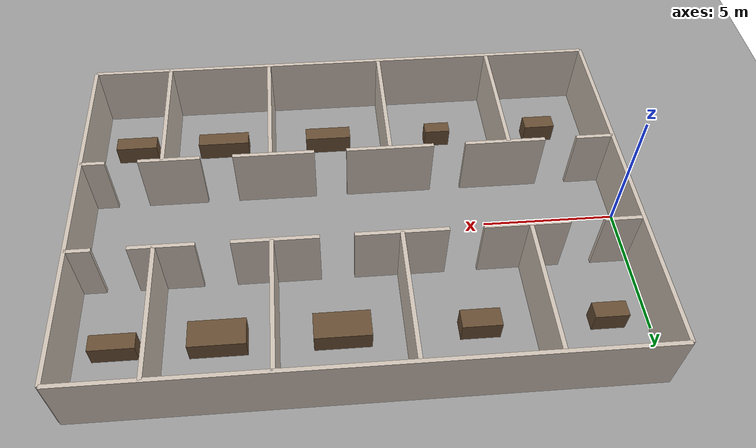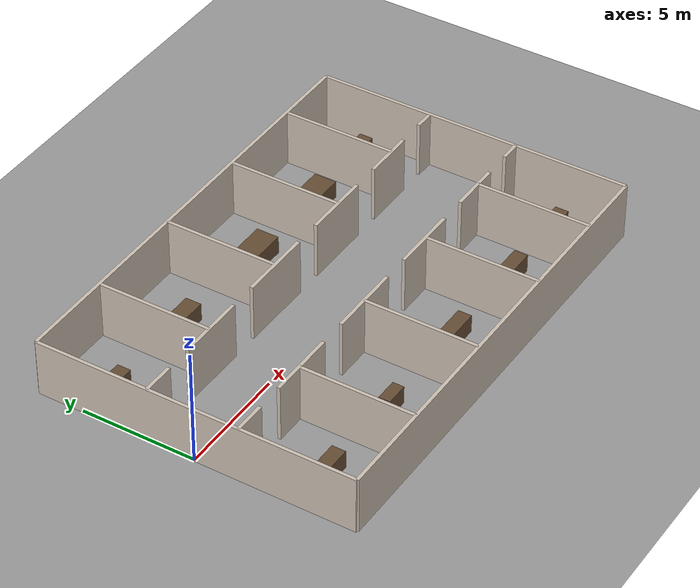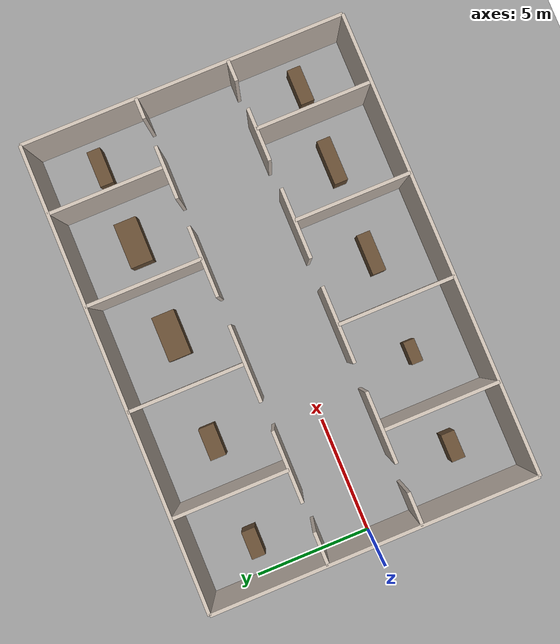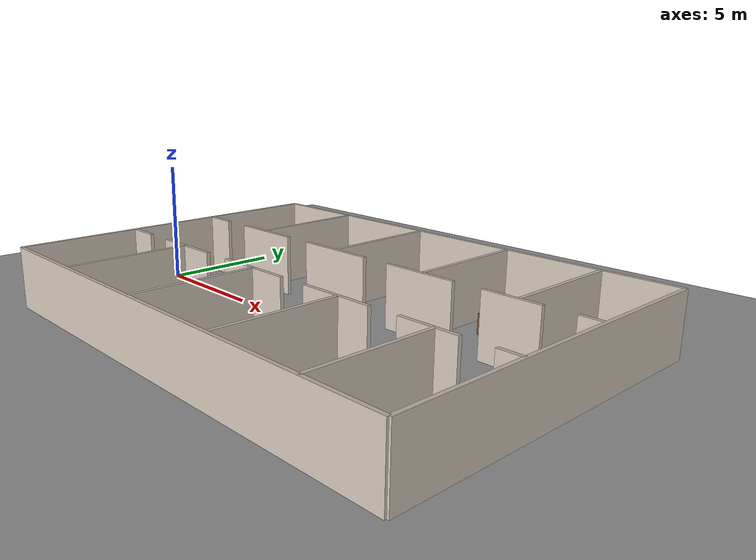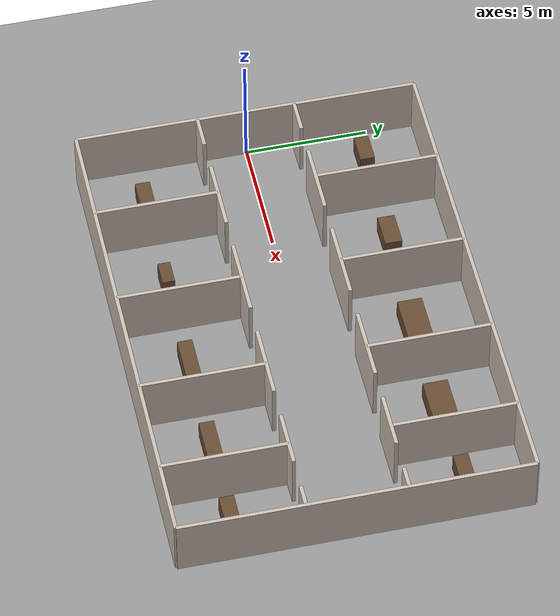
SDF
<?xml version="1.0"?>
<sdf version="1.8">
  <world name="safenav_lab">
    <physics name="1ms" type="ignored">
      <max_step_size>0.001</max_step_size>
      <real_time_factor>1.0</real_time_factor>
    </physics>
    <plugin filename="ignition-gazebo-physics-system" name="ignition::gazebo::systems::Physics"/>
    <plugin filename="ignition-gazebo-user-commands-system" name="ignition::gazebo::systems::UserCommands"/>
    <plugin filename="ignition-gazebo-scene-broadcaster-system" name="ignition::gazebo::systems::SceneBroadcaster"/>
    <plugin filename="ignition-gazebo-contact-system" name="ignition::gazebo::systems::Contact"/>
    <plugin filename="ignition-gazebo-sensors-system" name="ignition::gazebo::systems::Sensors">
      <render_engine>ogre2</render_engine>
    </plugin>

    <light type="directional" name="sun">
      <cast_shadows>true</cast_shadows>
      <pose>0 0 10 0 0 0</pose>
      <diffuse>0.8 0.8 0.8 1</diffuse>
      <specular>0.2 0.2 0.2 1</specular>
      <direction>-0.5 0.1 -0.9</direction>
    </light>

    <model name="ground_plane">
      <static>true</static>
      <link name="link">
        <collision name="collision">
          <geometry><plane><normal>0 0 1</normal><size>40 40</size></plane></geometry>
        </collision>
        <visual name="visual">
          <geometry><plane><normal>0 0 1</normal><size>40 40</size></plane></geometry>
          <material><ambient>0.6 0.6 0.6 1</ambient><diffuse>0.6 0.6 0.6 1</diffuse></material>
        </visual>
      </link>
    </model>
    <model name="wall_0">
      <static>true</static>
      <pose>10.000 -7.000 1.250 0 0 0.000000</pose>
      <link name="link">
        <collision name="collision">
          <geometry><box><size>20.000 0.150 2.500</size></box></geometry>
        </collision>
        <visual name="visual">
          <geometry><box><size>20.000 0.150 2.500</size></box></geometry>
          <material><ambient>0.8 0.75 0.7 1</ambient><diffuse>0.8 0.75 0.7 1</diffuse></material>
        </visual>
      </link>
    </model>
    <model name="wall_1">
      <static>true</static>
      <pose>10.000 7.000 1.250 0 0 0.000000</pose>
      <link name="link">
        <collision name="collision">
          <geometry><box><size>20.000 0.150 2.500</size></box></geometry>
        </collision>
        <visual name="visual">
          <geometry><box><size>20.000 0.150 2.500</size></box></geometry>
          <material><ambient>0.8 0.75 0.7 1</ambient><diffuse>0.8 0.75 0.7 1</diffuse></material>
        </visual>
      </link>
    </model>
    <model name="wall_2">
      <static>true</static>
      <pose>0.000 0.000 1.250 0 0 1.570796</pose>
      <link name="link">
        <collision name="collision">
          <geometry><box><size>14.000 0.150 2.500</size></box></geometry>
        </collision>
        <visual name="visual">
          <geometry><box><size>14.000 0.150 2.500</size></box></geometry>
          <material><ambient>0.8 0.75 0.7 1</ambient><diffuse>0.8 0.75 0.7 1</diffuse></material>
        </visual>
      </link>
    </model>
    <model name="wall_3">
      <static>true</static>
      <pose>20.000 0.000 1.250 0 0 1.570796</pose>
      <link name="link">
        <collision name="collision">
          <geometry><box><size>14.000 0.150 2.500</size></box></geometry>
        </collision>
        <visual name="visual">
          <geometry><box><size>14.000 0.150 2.500</size></box></geometry>
          <material><ambient>0.8 0.75 0.7 1</ambient><diffuse>0.8 0.75 0.7 1</diffuse></material>
        </visual>
      </link>
    </model>
    <model name="wall_4">
      <static>true</static>
      <pose>0.700 2.000 1.250 0 0 0.000000</pose>
      <link name="link">
        <collision name="collision">
          <geometry><box><size>1.400 0.150 2.500</size></box></geometry>
        </collision>
        <visual name="visual">
          <geometry><box><size>1.400 0.150 2.500</size></box></geometry>
          <material><ambient>0.8 0.75 0.7 1</ambient><diffuse>0.8 0.75 0.7 1</diffuse></material>
        </visual>
      </link>
    </model>
    <model name="wall_5">
      <static>true</static>
      <pose>4.125 2.000 1.250 0 0 0.000000</pose>
      <link name="link">
        <collision name="collision">
          <geometry><box><size>3.050 0.150 2.500</size></box></geometry>
        </collision>
        <visual name="visual">
          <geometry><box><size>3.050 0.150 2.500</size></box></geometry>
          <material><ambient>0.8 0.75 0.7 1</ambient><diffuse>0.8 0.75 0.7 1</diffuse></material>
        </visual>
      </link>
    </model>
    <model name="wall_6">
      <static>true</static>
      <pose>8.500 2.000 1.250 0 0 0.000000</pose>
      <link name="link">
        <collision name="collision">
          <geometry><box><size>3.300 0.150 2.500</size></box></geometry>
        </collision>
        <visual name="visual">
          <geometry><box><size>3.300 0.150 2.500</size></box></geometry>
          <material><ambient>0.8 0.75 0.7 1</ambient><diffuse>0.8 0.75 0.7 1</diffuse></material>
        </visual>
      </link>
    </model>
    <model name="wall_7">
      <static>true</static>
      <pose>12.875 2.000 1.250 0 0 0.000000</pose>
      <link name="link">
        <collision name="collision">
          <geometry><box><size>3.050 0.150 2.500</size></box></geometry>
        </collision>
        <visual name="visual">
          <geometry><box><size>3.050 0.150 2.500</size></box></geometry>
          <material><ambient>0.8 0.75 0.7 1</ambient><diffuse>0.8 0.75 0.7 1</diffuse></material>
        </visual>
      </link>
    </model>
    <model name="wall_8">
      <static>true</static>
      <pose>16.750 2.000 1.250 0 0 0.000000</pose>
      <link name="link">
        <collision name="collision">
          <geometry><box><size>2.300 0.150 2.500</size></box></geometry>
        </collision>
        <visual name="visual">
          <geometry><box><size>2.300 0.150 2.500</size></box></geometry>
          <material><ambient>0.8 0.75 0.7 1</ambient><diffuse>0.8 0.75 0.7 1</diffuse></material>
        </visual>
      </link>
    </model>
    <model name="wall_9">
      <static>true</static>
      <pose>19.550 2.000 1.250 0 0 0.000000</pose>
      <link name="link">
        <collision name="collision">
          <geometry><box><size>0.900 0.150 2.500</size></box></geometry>
        </collision>
        <visual name="visual">
          <geometry><box><size>0.900 0.150 2.500</size></box></geometry>
          <material><ambient>0.8 0.75 0.7 1</ambient><diffuse>0.8 0.75 0.7 1</diffuse></material>
        </visual>
      </link>
    </model>
    <model name="wall_10">
      <static>true</static>
      <pose>0.700 -2.000 1.250 0 0 0.000000</pose>
      <link name="link">
        <collision name="collision">
          <geometry><box><size>1.400 0.150 2.500</size></box></geometry>
        </collision>
        <visual name="visual">
          <geometry><box><size>1.400 0.150 2.500</size></box></geometry>
          <material><ambient>0.8 0.75 0.7 1</ambient><diffuse>0.8 0.75 0.7 1</diffuse></material>
        </visual>
      </link>
    </model>
    <model name="wall_11">
      <static>true</static>
      <pose>4.125 -2.000 1.250 0 0 0.000000</pose>
      <link name="link">
        <collision name="collision">
          <geometry><box><size>3.050 0.150 2.500</size></box></geometry>
        </collision>
        <visual name="visual">
          <geometry><box><size>3.050 0.150 2.500</size></box></geometry>
          <material><ambient>0.8 0.75 0.7 1</ambient><diffuse>0.8 0.75 0.7 1</diffuse></material>
        </visual>
      </link>
    </model>
    <model name="wall_12">
      <static>true</static>
      <pose>8.500 -2.000 1.250 0 0 0.000000</pose>
      <link name="link">
        <collision name="collision">
          <geometry><box><size>3.300 0.150 2.500</size></box></geometry>
        </collision>
        <visual name="visual">
          <geometry><box><size>3.300 0.150 2.500</size></box></geometry>
          <material><ambient>0.8 0.75 0.7 1</ambient><diffuse>0.8 0.75 0.7 1</diffuse></material>
        </visual>
      </link>
    </model>
    <model name="wall_13">
      <static>true</static>
      <pose>12.875 -2.000 1.250 0 0 0.000000</pose>
      <link name="link">
        <collision name="collision">
          <geometry><box><size>3.050 0.150 2.500</size></box></geometry>
        </collision>
        <visual name="visual">
          <geometry><box><size>3.050 0.150 2.500</size></box></geometry>
          <material><ambient>0.8 0.75 0.7 1</ambient><diffuse>0.8 0.75 0.7 1</diffuse></material>
        </visual>
      </link>
    </model>
    <model name="wall_14">
      <static>true</static>
      <pose>16.750 -2.000 1.250 0 0 0.000000</pose>
      <link name="link">
        <collision name="collision">
          <geometry><box><size>2.300 0.150 2.500</size></box></geometry>
        </collision>
        <visual name="visual">
          <geometry><box><size>2.300 0.150 2.500</size></box></geometry>
          <material><ambient>0.8 0.75 0.7 1</ambient><diffuse>0.8 0.75 0.7 1</diffuse></material>
        </visual>
      </link>
    </model>
    <model name="wall_15">
      <static>true</static>
      <pose>19.550 -2.000 1.250 0 0 0.000000</pose>
      <link name="link">
        <collision name="collision">
          <geometry><box><size>0.900 0.150 2.500</size></box></geometry>
        </collision>
        <visual name="visual">
          <geometry><box><size>0.900 0.150 2.500</size></box></geometry>
          <material><ambient>0.8 0.75 0.7 1</ambient><diffuse>0.8 0.75 0.7 1</diffuse></material>
        </visual>
      </link>
    </model>
    <model name="wall_16">
      <static>true</static>
      <pose>4.000 4.500 1.250 0 0 1.570796</pose>
      <link name="link">
        <collision name="collision">
          <geometry><box><size>5.000 0.150 2.500</size></box></geometry>
        </collision>
        <visual name="visual">
          <geometry><box><size>5.000 0.150 2.500</size></box></geometry>
          <material><ambient>0.8 0.75 0.7 1</ambient><diffuse>0.8 0.75 0.7 1</diffuse></material>
        </visual>
      </link>
    </model>
    <model name="wall_17">
      <static>true</static>
      <pose>8.500 4.500 1.250 0 0 1.570796</pose>
      <link name="link">
        <collision name="collision">
          <geometry><box><size>5.000 0.150 2.500</size></box></geometry>
        </collision>
        <visual name="visual">
          <geometry><box><size>5.000 0.150 2.500</size></box></geometry>
          <material><ambient>0.8 0.75 0.7 1</ambient><diffuse>0.8 0.75 0.7 1</diffuse></material>
        </visual>
      </link>
    </model>
    <model name="wall_18">
      <static>true</static>
      <pose>13.000 4.500 1.250 0 0 1.570796</pose>
      <link name="link">
        <collision name="collision">
          <geometry><box><size>5.000 0.150 2.500</size></box></geometry>
        </collision>
        <visual name="visual">
          <geometry><box><size>5.000 0.150 2.500</size></box></geometry>
          <material><ambient>0.8 0.75 0.7 1</ambient><diffuse>0.8 0.75 0.7 1</diffuse></material>
        </visual>
      </link>
    </model>
    <model name="wall_19">
      <static>true</static>
      <pose>17.000 4.500 1.250 0 0 1.570796</pose>
      <link name="link">
        <collision name="collision">
          <geometry><box><size>5.000 0.150 2.500</size></box></geometry>
        </collision>
        <visual name="visual">
          <geometry><box><size>5.000 0.150 2.500</size></box></geometry>
          <material><ambient>0.8 0.75 0.7 1</ambient><diffuse>0.8 0.75 0.7 1</diffuse></material>
        </visual>
      </link>
    </model>
    <model name="wall_20">
      <static>true</static>
      <pose>4.000 -4.500 1.250 0 0 1.570796</pose>
      <link name="link">
        <collision name="collision">
          <geometry><box><size>5.000 0.150 2.500</size></box></geometry>
        </collision>
        <visual name="visual">
          <geometry><box><size>5.000 0.150 2.500</size></box></geometry>
          <material><ambient>0.8 0.75 0.7 1</ambient><diffuse>0.8 0.75 0.7 1</diffuse></material>
        </visual>
      </link>
    </model>
    <model name="wall_21">
      <static>true</static>
      <pose>8.500 -4.500 1.250 0 0 1.570796</pose>
      <link name="link">
        <collision name="collision">
          <geometry><box><size>5.000 0.150 2.500</size></box></geometry>
        </collision>
        <visual name="visual">
          <geometry><box><size>5.000 0.150 2.500</size></box></geometry>
          <material><ambient>0.8 0.75 0.7 1</ambient><diffuse>0.8 0.75 0.7 1</diffuse></material>
        </visual>
      </link>
    </model>
    <model name="wall_22">
      <static>true</static>
      <pose>13.000 -4.500 1.250 0 0 1.570796</pose>
      <link name="link">
        <collision name="collision">
          <geometry><box><size>5.000 0.150 2.500</size></box></geometry>
        </collision>
        <visual name="visual">
          <geometry><box><size>5.000 0.150 2.500</size></box></geometry>
          <material><ambient>0.8 0.75 0.7 1</ambient><diffuse>0.8 0.75 0.7 1</diffuse></material>
        </visual>
      </link>
    </model>
    <model name="wall_23">
      <static>true</static>
      <pose>17.000 -4.500 1.250 0 0 1.570796</pose>
      <link name="link">
        <collision name="collision">
          <geometry><box><size>5.000 0.150 2.500</size></box></geometry>
        </collision>
        <visual name="visual">
          <geometry><box><size>5.000 0.150 2.500</size></box></geometry>
          <material><ambient>0.8 0.75 0.7 1</ambient><diffuse>0.8 0.75 0.7 1</diffuse></material>
        </visual>
      </link>
    </model>
    <model name="furniture_reception_counter">
      <static>true</static>
      <pose>1.500 4.600 0.4 0 0 0.000000</pose>
      <link name="link">
        <collision name="collision">
          <geometry><box><size>1.200 0.600 0.8</size></box></geometry>
        </collision>
        <visual name="visual">
          <geometry><box><size>1.200 0.600 0.8</size></box></geometry>
          <material><ambient>0.4 0.3 0.2 1</ambient><diffuse>0.4 0.3 0.2 1</diffuse></material>
        </visual>
      </link>
    </model>
    <model name="furniture_kitchen_island">
      <static>true</static>
      <pose>6.000 4.600 0.4 0 0 0.000000</pose>
      <link name="link">
        <collision name="collision">
          <geometry><box><size>1.400 0.700 0.8</size></box></geometry>
        </collision>
        <visual name="visual">
          <geometry><box><size>1.400 0.700 0.8</size></box></geometry>
          <material><ambient>0.4 0.3 0.2 1</ambient><diffuse>0.4 0.3 0.2 1</diffuse></material>
        </visual>
      </link>
    </model>
    <model name="furniture_meeting_table_a">
      <static>true</static>
      <pose>10.750 4.500 0.4 0 0 0.000000</pose>
      <link name="link">
        <collision name="collision">
          <geometry><box><size>2.000 1.000 0.8</size></box></geometry>
        </collision>
        <visual name="visual">
          <geometry><box><size>2.000 1.000 0.8</size></box></geometry>
          <material><ambient>0.4 0.3 0.2 1</ambient><diffuse>0.4 0.3 0.2 1</diffuse></material>
        </visual>
      </link>
    </model>
    <model name="furniture_meeting_table_b">
      <static>true</static>
      <pose>15.000 4.500 0.4 0 0 0.000000</pose>
      <link name="link">
        <collision name="collision">
          <geometry><box><size>2.000 1.000 0.8</size></box></geometry>
        </collision>
        <visual name="visual">
          <geometry><box><size>2.000 1.000 0.8</size></box></geometry>
          <material><ambient>0.4 0.3 0.2 1</ambient><diffuse>0.4 0.3 0.2 1</diffuse></material>
        </visual>
      </link>
    </model>
    <model name="furniture_office_desks">
      <static>true</static>
      <pose>18.500 4.600 0.4 0 0 0.000000</pose>
      <link name="link">
        <collision name="collision">
          <geometry><box><size>1.600 0.600 0.8</size></box></geometry>
        </collision>
        <visual name="visual">
          <geometry><box><size>1.600 0.600 0.8</size></box></geometry>
          <material><ambient>0.4 0.3 0.2 1</ambient><diffuse>0.4 0.3 0.2 1</diffuse></material>
        </visual>
      </link>
    </model>
    <model name="furniture_server_racks">
      <static>true</static>
      <pose>2.000 -4.600 0.4 0 0 0.000000</pose>
      <link name="link">
        <collision name="collision">
          <geometry><box><size>1.200 0.600 0.8</size></box></geometry>
        </collision>
        <visual name="visual">
          <geometry><box><size>1.200 0.600 0.8</size></box></geometry>
          <material><ambient>0.4 0.3 0.2 1</ambient><diffuse>0.4 0.3 0.2 1</diffuse></material>
        </visual>
      </link>
    </model>
    <model name="furniture_dock_platform">
      <static>true</static>
      <pose>6.250 -4.600 0.4 0 0 0.000000</pose>
      <link name="link">
        <collision name="collision">
          <geometry><box><size>1.000 0.500 0.8</size></box></geometry>
        </collision>
        <visual name="visual">
          <geometry><box><size>1.000 0.500 0.8</size></box></geometry>
          <material><ambient>0.4 0.3 0.2 1</ambient><diffuse>0.4 0.3 0.2 1</diffuse></material>
        </visual>
      </link>
    </model>
    <model name="furniture_storage_shelves">
      <static>true</static>
      <pose>10.750 -4.600 0.4 0 0 0.000000</pose>
      <link name="link">
        <collision name="collision">
          <geometry><box><size>1.800 0.600 0.8</size></box></geometry>
        </collision>
        <visual name="visual">
          <geometry><box><size>1.800 0.600 0.8</size></box></geometry>
          <material><ambient>0.4 0.3 0.2 1</ambient><diffuse>0.4 0.3 0.2 1</diffuse></material>
        </visual>
      </link>
    </model>
    <model name="furniture_lab_benches">
      <static>true</static>
      <pose>15.000 -4.600 0.4 0 0 0.000000</pose>
      <link name="link">
        <collision name="collision">
          <geometry><box><size>2.000 0.600 0.8</size></box></geometry>
        </collision>
        <visual name="visual">
          <geometry><box><size>2.000 0.600 0.8</size></box></geometry>
          <material><ambient>0.4 0.3 0.2 1</ambient><diffuse>0.4 0.3 0.2 1</diffuse></material>
        </visual>
      </link>
    </model>
    <model name="furniture_workshop_bench">
      <static>true</static>
      <pose>18.500 -4.600 0.4 0 0 0.000000</pose>
      <link name="link">
        <collision name="collision">
          <geometry><box><size>1.600 0.600 0.8</size></box></geometry>
        </collision>
        <visual name="visual">
          <geometry><box><size>1.600 0.600 0.8</size></box></geometry>
          <material><ambient>0.4 0.3 0.2 1</ambient><diffuse>0.4 0.3 0.2 1</diffuse></material>
        </visual>
      </link>
    </model>
  </world>
</sdf>
